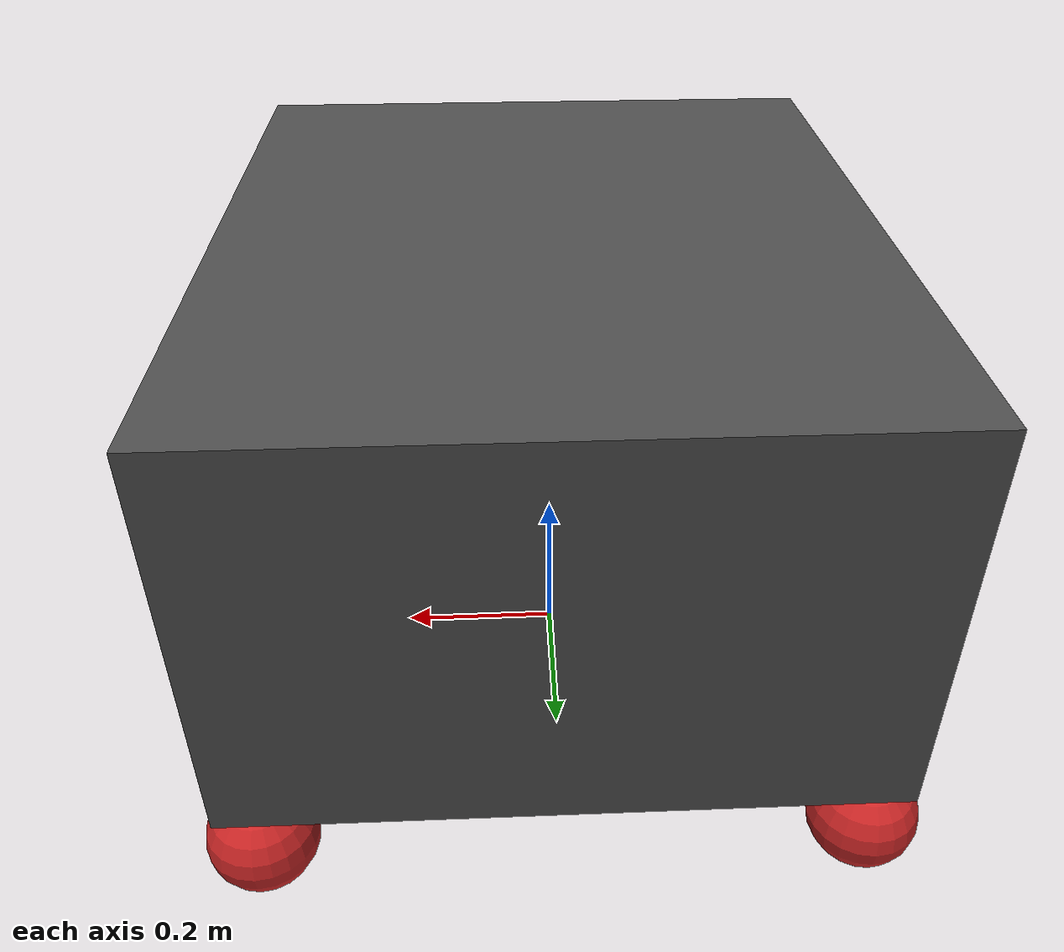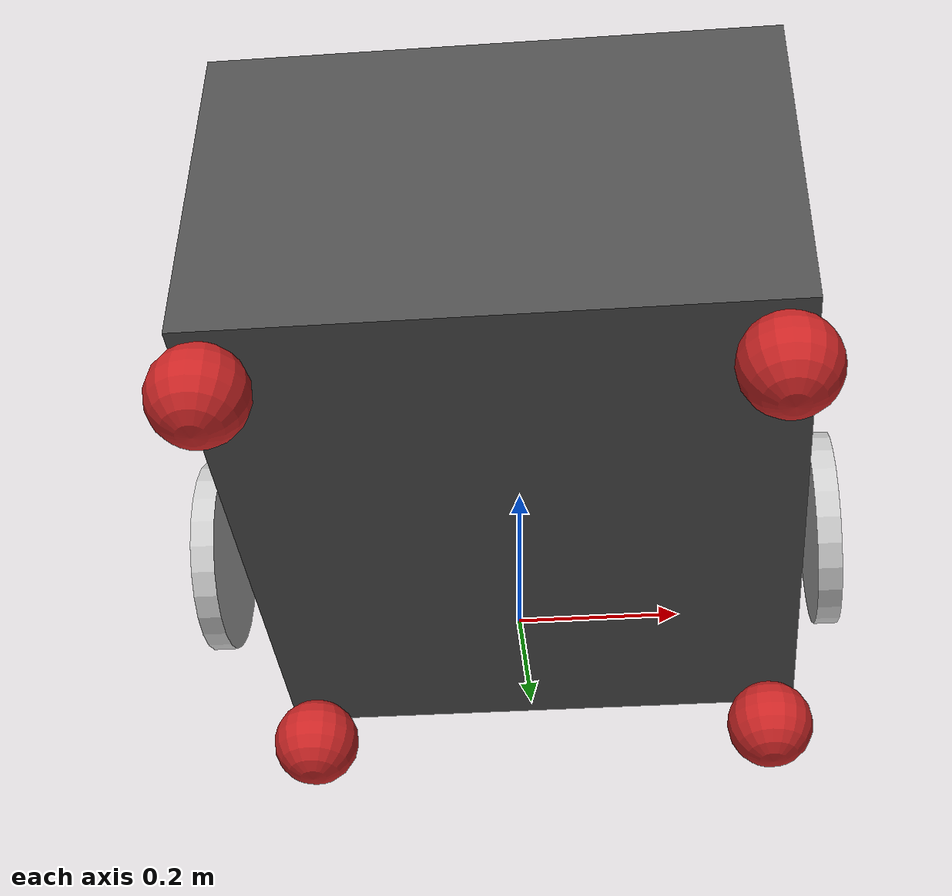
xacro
<?xml version="1.0"?>
<robot xmlns:xacro="http://www.ros.org/wiki/xacro">

    <xacro:property name="base_length" value="0.75" />
    <xacro:property name="base_width" value="0.88" />
    <xacro:property name="base_height" value="0.48" />

    <link name="base_footprint" />

    <link name="base_link">
        <visual>
            <geometry>
                <box size="${base_length} ${base_width} ${base_height}"/>
            </geometry>
            <origin xyz="0 0 0.365" rpy="0 0 0" />
            <material name="darkgrey" />
        </visual>
    </link>

    <xacro:macro name="wheel_link" params="prefix">
        <link name="${prefix}_wheel_link">
            <visual>
                <geometry>
                    <cylinder radius="0.125" length="0.03" />
                </geometry>
                <origin xyz="0 0 0.0125" rpy="0 0 0" />
                <material name="lightgrey" />

            </visual>
        </link>
    </xacro:macro>

    <xacro:wheel_link prefix="right" />
    <xacro:wheel_link prefix="left" />

    <link name="caster1_wheel_link">
        <visual>
            <geometry>
                <sphere radius="0.0625" />
            </geometry>
            <origin xyz="0 0 0" rpy="0 0 0 "/>
            <material name="red" />
        </visual>
    </link>

    <link name="caster2_wheel_link">
        <visual>
            <geometry>
                <sphere radius="0.0625" />
            </geometry>
            <origin xyz="0 0 0" rpy="0 0 0 "/>
            <material name="red" />
        </visual>
    </link>

    <link name="caster3_wheel_link">
        <visual>
            <geometry>
                <sphere radius="0.0625" />
            </geometry>
            <origin xyz="0 0 0" rpy="0 0 0 "/>
            <material name="red" />
        </visual>
    </link>

    <link name="caster4_wheel_link">
        <visual>
            <geometry>
                <sphere radius="0.0625" />
            </geometry>
            <origin xyz="0 0 0" rpy="0 0 0 "/>
            <material name="red" />
        </visual>
    </link>

    <joint name="base_joint" type="fixed">
        <parent link="base_footprint" />
        <child link="base_link" />
        <origin xyz="0 0 0" rpy="0 0 0"/>
    </joint>

    <joint name="base_rwheel_joint" type="continuous">
        <parent link="base_link" />
        <child link="right_wheel_link" />
        <origin xyz="0.38 0 0.125" rpy="0 ${pi / 2.0} 0" />
        <axis xyz="0 0 1" />
    </joint>

    <joint name="base_lwheel_joint" type="continuous">
        <parent link="base_link" />
        <child link="left_wheel_link" />
        <origin xyz="-0.408 0 0.125" rpy="0 ${pi / 2.0} 0" />
        <axis xyz="0 0 1" />
    </joint>

    <joint name="base_caster1_joint" type="fixed">
        <parent link="base_link" />
        <child link="caster1_wheel_link" />
        <origin xyz="0.335 -0.4 0.0625" rpy="0 0 0" />
    </joint>

    <joint name="base_caster2_joint" type="fixed">
        <parent link="base_link" />
        <child link="caster2_wheel_link" />
        <origin xyz="-0.335 -0.4 0.0625" rpy="0 0 0" />
    </joint>

    <joint name="base_caster3_joint" type="fixed">
        <parent link="base_link" />
        <child link="caster3_wheel_link" />
        <origin xyz="0.335 0.4 0.0625" rpy="0 0 0" />
    </joint>

    <joint name="base_caster4_joint" type="fixed">
        <parent link="base_link" />
        <child link="caster4_wheel_link" />
        <origin xyz="-0.335 0.4 0.0625" rpy="0 0 0" />
    </joint>

</robot>
